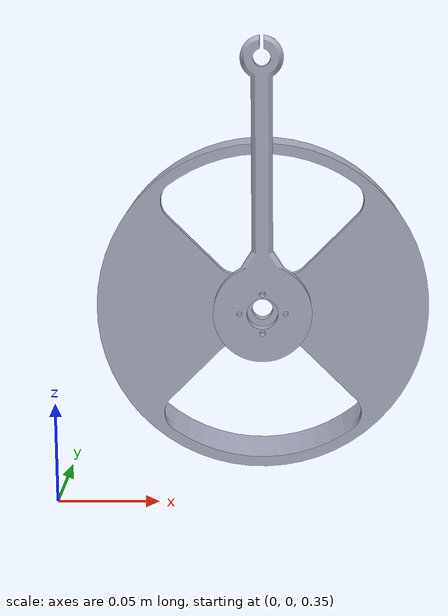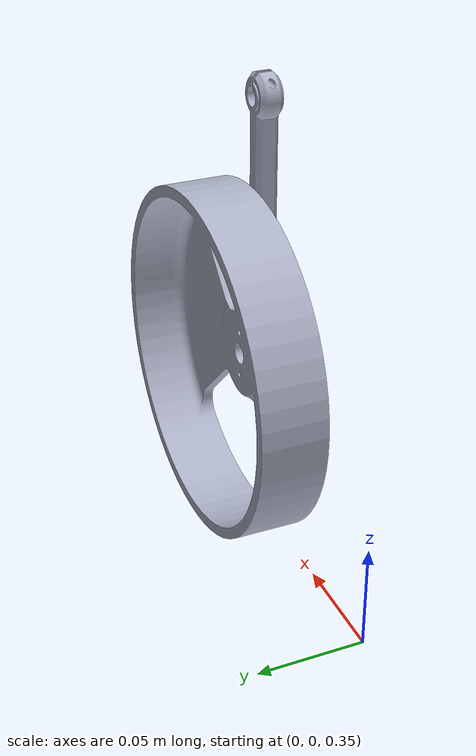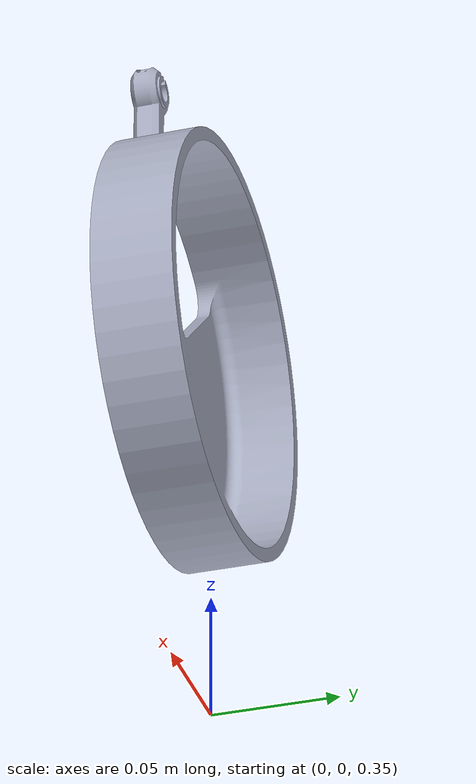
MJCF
<mujoco model="flywheel_pendulum">
  <compiler angle="radian" meshdir="assets" autolimits="true"/>

  <option cone="elliptic" impratio="100"/>

  <default>
    <default class="flywheel_pendulum">
      <joint damping="0.1" frictionloss="0"/>
    </default>
    <default class="visual">
      <geom type="mesh" group="2" contype="0" conaffinity="0"/>
    </default>
    <default class="collision">
      <geom type="cylinder" group="3" mass="0" density="0"/>
    </default>
  </default>

  <asset>
    <material name="metal" rgba=".9 .95 .95 1"/>
    <material name="black" rgba="0 0 0 1"/>
    <material name="white" rgba="1 1 1 1"/>
    <material name="gray" rgba="0.671705 0.692426 0.774270 1"/>

    <mesh file="pendulum_arm.stl"/>
    <mesh file="reaction_wheel.stl"/>

  </asset>

  <worldbody>
    <body name="base" pos="0.1 0 0.445" childclass="flywheel_pendulum">

      <body name="pendulum" pos="0.0 0.0 0" quat="-0.3 0 -0.7173561 0">

        <joint name="pendulum_joint" axis="0 1 0" pos="-0.085 0 -0.085"/>
        <geom mesh="pendulum_arm" material="gray" class="visual" mass="0.3"/>

        <body name="flywheel" pos="0 0.01 0.0">

          <joint name="flywheel_joint" axis="0 1 0"/>
          <geom mesh="reaction_wheel" material="gray" class="visual"  mass="0.28"/>
        </body>

      </body>

    </body>
  </worldbody>

  <actuator>
    <motor name="pendulum_joint" joint="pendulum_joint" ctrlrange="-5 5"/>
    <motor name="flywheel_joint" joint="flywheel_joint" ctrlrange="-10 10"/>
  </actuator>

  <keyframe>
    <key name="home" qpos="-3.14 0"/>
  </keyframe>
</mujoco>
